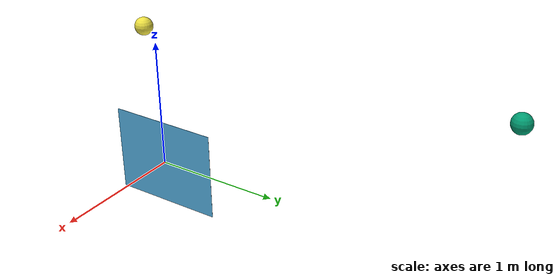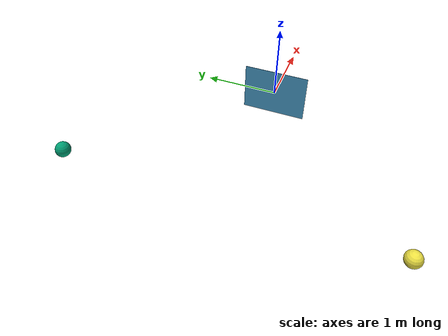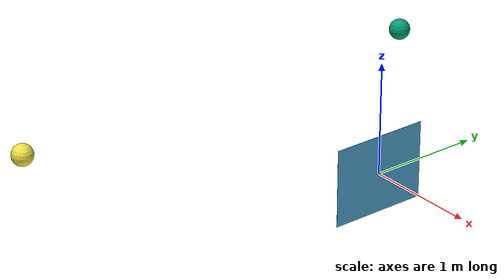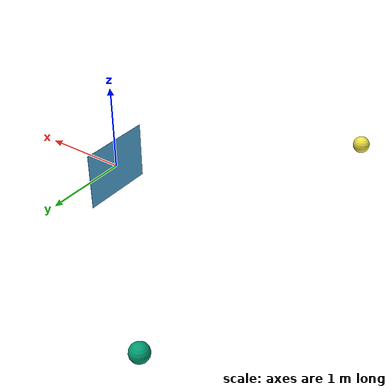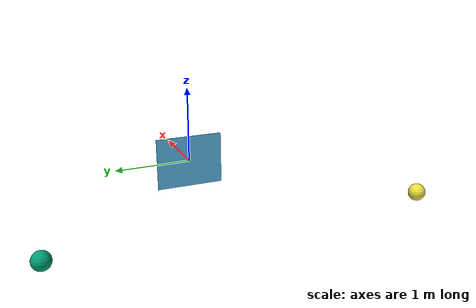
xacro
<?xml version="1.0"?>
<robot name="epipolar" xmlns:xacro="http://ros.org/wiki/xacro">
    <xacro:property name="M_PI" value="3.1415926535897931"/>
    <xacro:property name="SQRT" value="1.41421"/>
    <xacro:property name="radius" value="3"/>
    <xacro:property name="DEG2RAD" value="0.01745329251"/>

    <material name="blue">
        <color rgba="0 0 1 1"/>
    </material>

    <link name="world"/>

    <link name="checkerboard_link">
       <visual>
            <geometry>
                <box size="0.001 0.9 0.7" />
            </geometry>
       </visual>
        <collision>
            <geometry>
                <box size="0.001 0.9 0.7" />
            </geometry>
        </collision>
        <inertial>
            <mass value="1"/>
            <origin xyz="0 0 0" rpy="0 0 0"/>
            <inertia ixx="0" ixy="0" ixz="0" iyy="0" iyz="0" izz="0"/>
        </inertial>
    </link>

    <link name="camera_l_link">
        <visual>
            <geometry>
                <sphere radius="0.1"/>
            </geometry>
        </visual>
        <collision>
            <geometry>
                <sphere radius="0.1"/>
            </geometry>
        </collision>
        <inertial>
            <mass value="1"/>
            <origin xyz="0 0 0" rpy="0 0 0"/>
            <inertia ixx="0" ixy="0" ixz="0" iyy="0" iyz="0" izz="0"/>
        </inertial>
    </link>

    <link name="camera_r_link">
        <visual>
            <geometry>
                <sphere radius="0.1"/>
            </geometry>
        </visual>
        <collision>
            <geometry>
                <sphere radius="0.1"/>
            </geometry>
        </collision>
        <inertial>
            <mass value="1"/>
            <origin xyz="0 0 0" rpy="0 0 0"/>
            <inertia ixx="0" ixy="0" ixz="0" iyy="0" iyz="0" izz="0"/>
        </inertial>
    </link>

    <joint name="checkerboard_joint" type="fixed">
        <origin xyz="0 0 0" rpy="0 0 0"/>
        <parent link="world"/>
        <child link="checkerboard_link"/>
    </joint>

    <joint name="camera_l_joint" type="fixed">
        <origin xyz="-${SQRT/2*radius} ${SQRT/2*radius} 0" rpy="0 0 ${-45*DEG2RAD}"/>
        <parent link="world"/>
        <child link="camera_l_link"/>
    </joint>

    <joint name="camera_r_joint" type="fixed">
        <origin xyz="-${SQRT/2*radius} -${SQRT/2*radius} 0" rpy="0 0 ${45*DEG2RAD}"/>
        <parent link="world"/>
        <child link="camera_r_link"/>
    </joint>

    <gazebo reference="checkerboard_link">
        <material>Checkerboard</material>
    </gazebo>

    <gazebo reference="fiducial_link">
        <material>Gazebo/Orange</material>
    </gazebo>

    <gazebo reference="camera_l_link">
        <sensor type="camera" name="camera_l">
            <update_rate>30.0</update_rate>
            <visualize>1</visualize>
            <camera name="camera_l">
                <horizontal_fov>${M_PI/180.0*30.0}</horizontal_fov>
                <image>
                    <width>1280</width>
                    <height>720</height>
                    <format>R8G8B8</format>
                </image>
                <clip>
                    <near>0.02</near>
                    <far>300</far>
                </clip>
                <noise>
                    <type>gaussian</type>
                    <mean>0.0</mean>
                    <stddev>0.0</stddev>
                </noise>
            </camera>
            <plugin name="camera_controller" filename="libgazebo_ros_camera.so">
                <alwaysOn>true</alwaysOn>
                <updateRate>0.0</updateRate>
                <cameraName>camera_l</cameraName>
                <imageTopicName>image_raw</imageTopicName>
                <cameraInfoTopicName>camera_info</cameraInfoTopicName>
                <frameName>camera_l</frameName>
                <hackBaseline>0.0</hackBaseline>
                <distortionK1>0.0</distortionK1>
                <distortionK2>0.0</distortionK2>
                <distortionK3>0.0</distortionK3>
                <distortionT1>0.0</distortionT1>
                <distortionT2>0.0</distortionT2>
                <CxPrime>0</CxPrime>
                <Cx>0.0</Cx>
                <Cy>0.0</Cy>
                <focalLength>0.0</focalLength>
            </plugin>
        </sensor>
    </gazebo>

    <gazebo reference="camera_r_link">
        <sensor type="camera" name="camera_r">
            <update_rate>30.0</update_rate>
            <visualize>1</visualize>
            <camera name="camera_r">
                <horizontal_fov>${M_PI/180.0*30.0}</horizontal_fov>
                <image>
                    <width>1280</width>
                    <height>720</height>
                    <format>R8G8B8</format>
                </image>
                <clip>
                    <near>0.02</near>
                    <far>300</far>
                </clip>
                <noise>
                    <type>gaussian</type>
                    <mean>0.0</mean>
                    <stddev>0.0</stddev>
                </noise>
            </camera>
            <plugin name="camera_controller" filename="libgazebo_ros_camera.so">
                <alwaysOn>true</alwaysOn>
                <updateRate>0.0</updateRate>
                <cameraName>camera_r</cameraName>
                <imageTopicName>image_raw</imageTopicName>
                <cameraInfoTopicName>camera_info</cameraInfoTopicName>
                <frameName>camera_r</frameName>
                <hackBaseline>0.0</hackBaseline>
                <distortionK1>0.0</distortionK1>
                <distortionK2>0.0</distortionK2>
                <distortionK3>0.0</distortionK3>
                <distortionT1>0.0</distortionT1>
                <distortionT2>0.0</distortionT2>
                <CxPrime>0</CxPrime>
                <Cx>0.0</Cx>
                <Cy>0.0</Cy>
                <focalLength>0.0</focalLength>
            </plugin>
        </sensor>
    </gazebo>
</robot>
